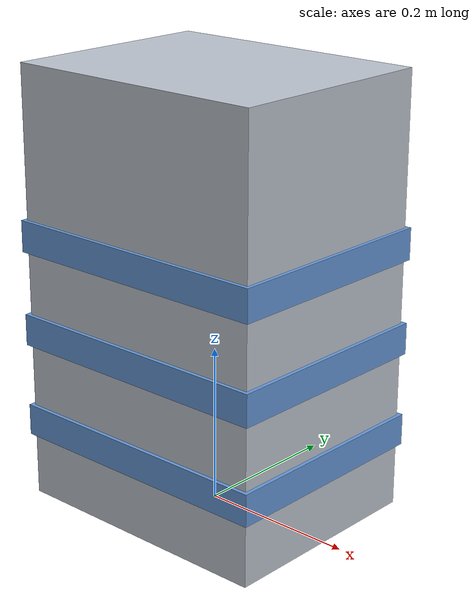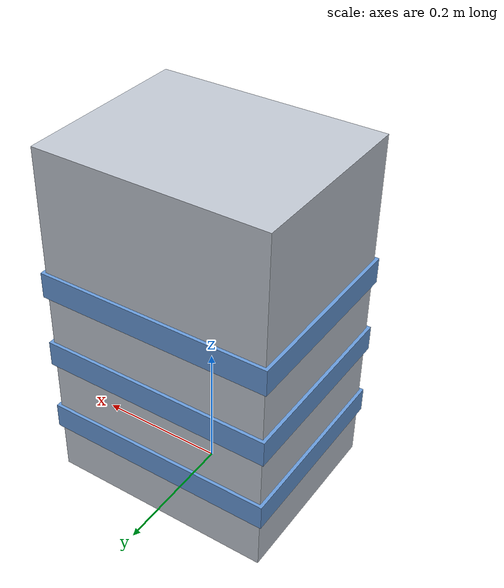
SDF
<?xml version="1.0" ?>
<sdf version="1.6">
  <model name="building_normal">
    <static>true</static>
    <link name="body">
      <pose>0 0 0.275 0 0 0</pose>
      <visual name="body_v"><geometry><box><size>0.35 0.28 0.55</size></box></geometry>
        <material><ambient>0.75 0.78 0.82 1.0</ambient><diffuse>0.75 0.78 0.82 1.0</diffuse></material></visual>
      <collision name="body_c"><geometry><box><size>0.35 0.28 0.55</size></box></geometry></collision>
    </link>
    <link name="win0"><pose>0 0 0.10 0 0 0</pose>
      <visual name="win0_v"><geometry><box><size>0.36 0.29 0.04</size></box></geometry>
        <material><ambient>0.4 0.6 0.85 1.0</ambient><diffuse>0.4 0.6 0.85 1.0</diffuse></material></visual>
    </link>
    <joint name="w0_j" type="fixed"><parent>body</parent><child>win0</child></joint>
    <link name="win1"><pose>0 0 0.22 0 0 0</pose>
      <visual name="win1_v"><geometry><box><size>0.36 0.29 0.04</size></box></geometry>
        <material><ambient>0.4 0.6 0.85 1.0</ambient><diffuse>0.4 0.6 0.85 1.0</diffuse></material></visual>
    </link>
    <joint name="w1_j" type="fixed"><parent>body</parent><child>win1</child></joint>
    <link name="win2"><pose>0 0 0.34 0 0 0</pose>
      <visual name="win2_v"><geometry><box><size>0.36 0.29 0.04</size></box></geometry>
        <material><ambient>0.4 0.6 0.85 1.0</ambient><diffuse>0.4 0.6 0.85 1.0</diffuse></material></visual>
    </link>
    <joint name="w2_j" type="fixed"><parent>body</parent><child>win2</child></joint>
  </model>
</sdf>
